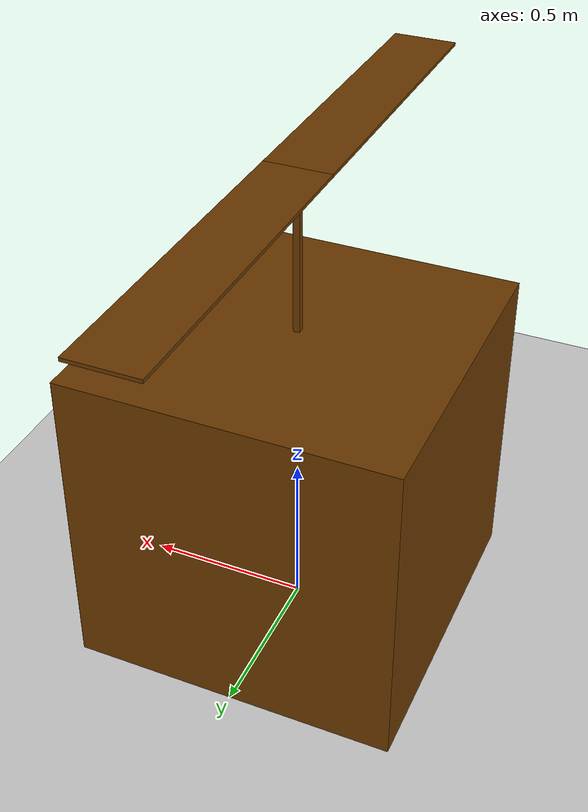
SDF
<?xml version="1.0" ?>
<sdf version="1.9">
    <world name="car_world">
        <physics name="1ms" type="ignored">
            <max_step_size>0.001</max_step_size>
            <real_time_factor>1.0</real_time_factor>
        </physics>
        <plugin
            filename="gz-sim-physics-system"
            name="gz::sim::systems::Physics">
        </plugin>
        <plugin
            filename="gz-sim-user-commands-system"
            name="gz::sim::systems::UserCommands">
        </plugin>
        <plugin
            filename="gz-sim-scene-broadcaster-system"
            name="gz::sim::systems::SceneBroadcaster">
        </plugin>

        <light type="directional" name="sun">
            <cast_shadows>true</cast_shadows>
            <pose>0 0 10 0 0 0</pose>
            <diffuse>0.8 0.8 0.8 1</diffuse>
            <specular>0.2 0.2 0.2 1</specular>
            <attenuation>
                <range>1000</range>
                <constant>0.9</constant>
                <linear>0.01</linear>
                <quadratic>0.001</quadratic>
            </attenuation>
            <direction>-0.5 0.1 -0.9</direction>
        </light>

        <model name="ground_plane">
            <static>true</static>
            <link name="link">
                <collision name="collision">
                <geometry>
                    <plane>
                    <normal>0 0 1</normal>
                    </plane>
                </geometry>
                </collision>
                <visual name="visual">
                <geometry>
                    <plane>
                    <normal>0 0 1</normal>
                    <size>1 1</size>
                    </plane>
                </geometry>
                <material>
                    <ambient>0.8 0.8 0.8 1</ambient>
                    <diffuse>0.8 0.8 0.8 1</diffuse>
                    <specular>0.8 0.8 0.8 1</specular>
                </material>
                </visual>
            </link>
        </model>
        <model name="lift_drag_demo_model">
            <pose>0 0 0 0 0 0</pose>
            <link name="body">
                <pose>0.0 0 0.5 0 0 0</pose>
                <inertial>
                <pose>0.0 0.0 0.0 0.0 0.0 0.0</pose>
                <inertia>
                    <ixx>1.8</ixx>
                    <ixy>0.0</ixy>
                    <ixz>0.0</ixz>
                    <iyy>1.8</iyy>
                    <iyz>0.0</iyz>
                    <izz>1.8</izz>
                </inertia>
                <mass>10.0</mass>
                </inertial>
                <collision name="collision">
                <geometry>
                    <box>
                    <size>1 1 1</size>
                    </box>
                </geometry>
                <surface>
                    <friction>
                    <ode>
                        <mu>0.1</mu>
                        <mu2>0.1</mu2>
                    </ode>
                    </friction>
                </surface>
                </collision>
                <visual name="visual">
                <geometry>
                    <box>
                    <size>1 1 1</size>
                    </box>
                </geometry>
                <material>
                    <ambient>0.2 0.2 0.2 1.0</ambient>
                    <diffuse>.421 0.225 0.0 1.0</diffuse>
                </material>
                </visual>
            </link>
            <link name="rod_1">
                <pose>0 0 1.25 0 0 0</pose>
                <inertial>
                <pose>0.0 0.0 0 0.0 0.0 0.0</pose>
                <inertia>
                    <ixx>0.012</ixx>
                    <ixy>0.0</ixy>
                    <ixz>0.0</ixz>
                    <iyy>0.012</iyy>
                    <iyz>0.0</iyz>
                    <izz>0.0012</izz>
                </inertia>
                <mass>1.0</mass>
                </inertial>
                <collision name="collision">
                <geometry>
                    <box>
                    <size>0.02 0.02 0.5</size>
                    </box>
                </geometry>
                </collision>
                <visual name="visual">
                <geometry>
                    <box>
                    <size>0.02 0.02 0.5</size>
                    </box>
                </geometry>
                <material>
                    <ambient>0.3 0.3 0.3 1.0</ambient>
                    <diffuse>.421 0.225 0.0 1.0</diffuse>
                </material>
                </visual>
            </link>
            <link name="blade_1">
                <pose>0 0 1.5 0.0 0 0</pose>
                <inertial>
                <pose>0.0 0.5 0 0.0 0.0 0.0</pose>
                <inertia>
                    <ixx>0.0000465</ixx>
                    <ixy>0.0</ixy>
                    <ixz>0.0</ixz>
                    <iyy>0.0000006</iyy>
                    <iyz>0.0</iyz>
                    <izz>0.0000470</izz>
                </inertia>
                <mass>0.01</mass>
                </inertial>
                <collision name="collision">
                <pose>0.0 0.5 0 0.0 0.0 0.0</pose>
                <geometry>
                    <box>
                    <size>0.2 1.0 0.01</size>
                    </box>
                </geometry>
                </collision>
                <visual name="visual">
                <pose>0.0 0.5 0 0.0 0.0 0.0</pose>
                <geometry>
                    <box>
                    <size>0.2 1.0 0.01</size>
                    </box>
                </geometry>
                <material>
                    <ambient>0.5 0.2 0.2 1.0</ambient>
                    <diffuse>.421 0.225 0.0 1.0</diffuse>
                </material>
                </visual>
            </link>
            <link name="blade_2">
                <pose>0 0 1.5 0.0 0 3.141593</pose>
                <inertial>
                <pose>0.0 0.5 0 0.0 0.0 0.0</pose>
                <inertia>
                    <ixx>0.0000465</ixx>
                    <ixy>0.0</ixy>
                    <ixz>0.0</ixz>
                    <iyy>0.0000006</iyy>
                    <iyz>0.0</iyz>
                    <izz>0.0000470</izz>
                </inertia>
                <mass>0.01</mass>
                </inertial>
                <collision name="collision">
                <pose>0.0 0.5 0 0.0 0.0 0.0</pose>
                <geometry>
                    <box>
                    <size>0.2 1.0 0.01</size>
                    </box>
                </geometry>
                </collision>
                <visual name="visual">
                <pose>0.0 0.5 0 0.0 0.0 0</pose>
                <geometry>
                    <box>
                    <size>0.2 1.0 0.01</size>
                    </box>
                </geometry>
                <material>
                    <ambient>0.2 0.5 0.2 1.0</ambient>
                    <diffuse>.421 0.225 0.0 1.0</diffuse>
                </material>
                </visual>
            </link>
            <joint name="rod_1_joint" type="revolute">
                <parent>body</parent>
                <child>rod_1</child>
                <pose>0.0 0.0 0.0 0.0 0.0 0.0</pose>
                <axis>
                <limit>
                    <lower>-1e16</lower>
                    <upper>1e16</upper>
                </limit>
                <xyz>0.0 0.0 -1.0</xyz>
                <dynamics>
                    <damping>0.0001</damping>
                </dynamics>
                </axis>
                <physics>
                <ode>
                    <cfm_damping>1</cfm_damping>
                </ode>
                </physics>
            </joint>
            <joint name="blade_1_joint" type="fixed">
                <parent>rod_1</parent>
                <child>blade_1</child>
                <pose>0.0 0.0 0.0 0.0 0.0 0.0</pose>
            </joint>
            <joint name="blade_2_joint" type="fixed">
                <parent>rod_1</parent>
                <child>blade_2</child>
                <pose>0.0 0.0 0.0 0.0 0.0 0.0</pose>
            </joint>

            <plugin
                filename="gz-sim-joint-state-publisher-system"
                name="gz::sim::systems::JointStatePublisher">
            </plugin>
        </model>
    </world>
</sdf>
